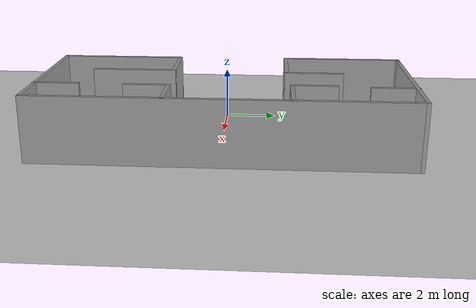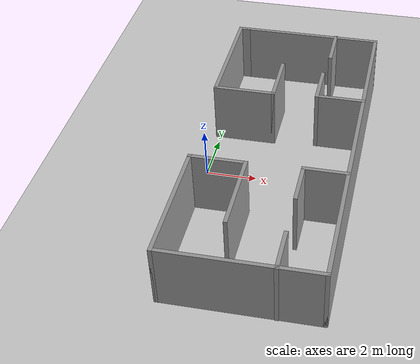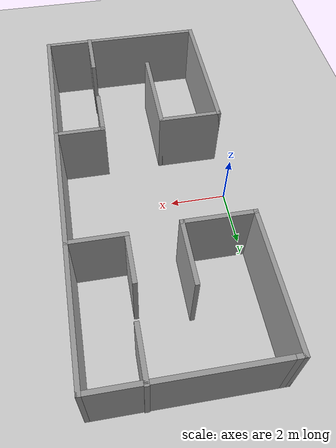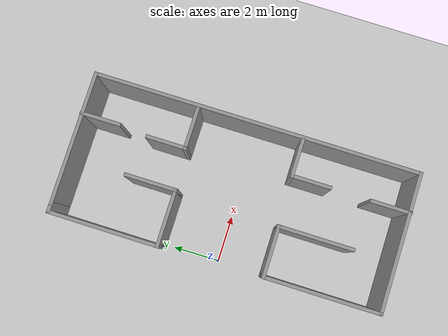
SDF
<sdf version="1.7">
 <world name="default">
  <light name="sun" type="directional">
   <pose>0 0 10 0 -0 0</pose>
   <diffuse>0.8 0.8 0.8 1</diffuse>
   <specular>0.2 0.2 0.2 1</specular>
   <attenuation>
    <range>1000</range>
    <constant>0.9</constant>
    <linear>0.01</linear>
    <quadratic>0.001</quadratic>
   </attenuation>
   <direction>-0.5 0.1 -0.9</direction>
   <spot><inner_angle>0</inner_angle><outer_angle>0</outer_angle><falloff>0</falloff></spot>
  </light>
  <model name="ground_plane">
   <static>1</static>
   <link name="link">
    <collision name="collision">
     <geometry><plane><normal>0 0 1</normal><size>100 100</size></plane></geometry>
     <surface><friction><ode><mu>100</mu><mu2>50</mu2></ode></friction></surface>
    </collision>
    <visual name="visual">
     <cast_shadows>0</cast_shadows>
     <geometry><plane><normal>0 0 1</normal><size>100 100</size></plane></geometry>
     <material>
      <script><uri>file://media/materials/scripts/gazebo.material</uri><name>Gazebo/Grey</name></script>
     </material>
    </visual>
   </link>
  </model>
  <gravity>0 0 -9.8</gravity>
  <magnetic_field>6e-06 2.3e-05 -4.2e-05</magnetic_field>
  <atmosphere type="adiabatic"/>
  <physics type="ode">
   <max_step_size>0.001</max_step_size>
   <real_time_factor>1</real_time_factor>
   <real_time_update_rate>1000</real_time_update_rate>
  </physics>
  <scene><ambient>0.4 0.4 0.4 1</ambient><background>0.7 0.7 0.7 1</background><shadows>1</shadows></scene>
  <audio><device>default</device></audio>
  <spherical_coordinates>
   <surface_model>EARTH_WGS84</surface_model>
   <latitude_deg>0</latitude_deg>
   <longitude_deg>0</longitude_deg>
   <elevation>0</elevation>
   <heading_deg>0</heading_deg>
  </spherical_coordinates>
  <model name="mapaAleatorio">
   <pose>2.84183 0.115024 0 0 -0 0</pose>
   <link name="Wall_19">
    <collision name="Wall_19_Collision">
     <geometry><box><size>5 0.15 2.5</size></box></geometry>
     <pose>0 0 1.25 0 -0 0</pose>
    </collision>
    <visual name="Wall_19_Visual">
     <pose>0 0 1.25 0 -0 0</pose>
     <geometry><box><size>5 0.15 2.5</size></box></geometry>
     <material>
      <script><uri>file://media/materials/scripts/gazebo.material</uri><name>Gazebo/Grey</name></script>
      <ambient>1 1 1 1</ambient>
     </material>
     <meta><layer>0</layer></meta>
    </visual>
    <pose>-2.875 -4.50306 0 0 -0 -1.5708</pose>
   </link>
   <link name="Wall_20">
    <collision name="Wall_20_Collision">
     <geometry><box><size>6 0.15 2.5</size></box></geometry>
     <pose>0 0 1.25 0 -0 0</pose>
    </collision>
    <visual name="Wall_20_Visual">
     <pose>0 0 1.25 0 -0 0</pose>
     <geometry><box><size>6 0.15 2.5</size></box></geometry>
     <material>
      <script><uri>file://media/materials/scripts/gazebo.material</uri><name>Gazebo/Grey</name></script>
      <ambient>1 1 1 1</ambient>
     </material>
     <meta><layer>0</layer></meta>
    </visual>
    <pose>0.05 -6.92806 0 0 -0 0</pose>
   </link>
   <link name="Wall_21">
    <collision name="Wall_21_Collision">
     <geometry><box><size>14 0.15 2.5</size></box></geometry>
     <pose>0 0 1.25 0 -0 0</pose>
    </collision>
    <visual name="Wall_21_Visual">
     <pose>0 0 1.25 0 -0 0</pose>
     <geometry><box><size>14 0.15 2.5</size></box></geometry>
     <material>
      <script><uri>file://media/materials/scripts/gazebo.material</uri><name>Gazebo/Grey</name></script>
      <ambient>1 1 1 1</ambient>
     </material>
     <meta><layer>0</layer></meta>
    </visual>
    <pose>2.975 -0.003061 0 0 -0 1.5708</pose>
   </link>
   <link name="Wall_22">
    <collision name="Wall_22_Collision">
     <geometry><box><size>5.75 0.15 2.5</size></box></geometry>
     <pose>0 0 1.25 0 -0 0</pose>
    </collision>
    <visual name="Wall_22_Visual">
     <pose>0 0 1.25 0 -0 0</pose>
     <geometry><box><size>5.75 0.15 2.5</size></box></geometry>
     <material>
      <script><uri>file://media/materials/scripts/gazebo.material</uri><name>Gazebo/Grey</name></script>
      <ambient>1 1 1 1</ambient>
     </material>
     <meta><layer>0</layer></meta>
    </visual>
    <pose>0.175 6.92194 0 0 -0 3.14159</pose>
   </link>
   <link name="Wall_24">
    <collision name="Wall_24_Collision">
     <geometry><box><size>0.5 0.15 2.5</size></box></geometry>
     <pose>0 0 1.25 0 -0 0</pose>
    </collision>
    <visual name="Wall_24_Visual">
     <pose>0 0 1.25 0 -0 0</pose>
     <geometry><box><size>0.5 0.15 2.5</size></box></geometry>
     <material>
      <script><uri>file://media/materials/scripts/gazebo.material</uri><name>Gazebo/Grey</name></script>
      <ambient>1 1 1 1</ambient>
     </material>
     <meta><layer>0</layer></meta>
    </visual>
    <pose>-2.8 6.92194 0 0 -0 3.14159</pose>
   </link>
   <link name="Wall_25">
    <collision name="Wall_25_Collision">
     <geometry><box><size>4.75 0.15 2.5</size></box></geometry>
     <pose>0 0 1.25 0 -0 0</pose>
    </collision>
    <visual name="Wall_25_Visual">
     <pose>0 0 1.25 0 -0 0</pose>
     <geometry><box><size>4.75 0.15 2.5</size></box></geometry>
     <material>
      <script><uri>file://media/materials/scripts/gazebo.material</uri><name>Gazebo/Grey</name></script>
      <ambient>1 1 1 1</ambient>
     </material>
     <meta><layer>0</layer></meta>
    </visual>
    <pose>-2.975 4.62194 0 0 -0 -1.5708</pose>
   </link>
   <link name="Wall_26">
    <collision name="Wall_26_Collision">
     <geometry><box><size>2.5 0.15 2.5</size></box></geometry>
     <pose>0 0 1.25 0 -0 0</pose>
    </collision>
    <visual name="Wall_26_Visual">
     <pose>0 0 1.25 0 -0 0</pose>
     <geometry><box><size>2.5 0.15 2.5</size></box></geometry>
     <material>
      <script><uri>file://media/materials/scripts/gazebo.material</uri><name>Gazebo/Grey</name></script>
      <ambient>1 1 1 1</ambient>
     </material>
     <meta><layer>0</layer></meta>
    </visual>
    <pose>-1.8 2.32194 0 0 -0 0</pose>
   </link>
   <link name="Wall_27">
    <collision name="Wall_27_Collision">
     <geometry><box><size>2.25 0.15 2.5</size></box></geometry>
     <pose>0 0 1.25 0 -0 0</pose>
    </collision>
    <visual name="Wall_27_Visual">
     <pose>0 0 1.25 0 -0 0</pose>
     <geometry><box><size>2.25 0.15 2.5</size></box></geometry>
     <material>
      <script><uri>file://media/materials/scripts/gazebo.material</uri><name>Gazebo/Grey</name></script>
      <ambient>1 1 1 1</ambient>
     </material>
     <meta><layer>0</layer></meta>
    </visual>
    <pose>-0.625 3.37194 0 0 -0 1.5708</pose>
   </link>
   <link name="Wall_29">
    <collision name="Wall_29_Collision">
     <geometry><box><size>2.25 0.15 2.5</size></box></geometry>
     <pose>0 0 1.25 0 -0 0</pose>
    </collision>
    <visual name="Wall_29_Visual">
     <pose>0 0 1.25 0 -0 0</pose>
     <geometry><box><size>2.25 0.15 2.5</size></box></geometry>
     <material>
      <script><uri>file://media/materials/scripts/gazebo.material</uri><name>Gazebo/Grey</name></script>
      <ambient>1 1 1 1</ambient>
     </material>
     <meta><layer>0</layer></meta>
    </visual>
    <pose>-1.825 -2.07806 0 0 -0 0</pose>
   </link>
   <link name="Wall_30">
    <collision name="Wall_30_Collision">
     <geometry><box><size>3.25 0.15 2.5</size></box></geometry>
     <pose>0 0 1.25 0 -0 0</pose>
    </collision>
    <visual name="Wall_30_Visual">
     <pose>0 0 1.25 0 -0 0</pose>
     <geometry><box><size>3.25 0.15 2.5</size></box></geometry>
     <material>
      <script><uri>file://media/materials/scripts/gazebo.material</uri><name>Gazebo/Grey</name></script>
      <ambient>1 1 1 1</ambient>
     </material>
     <meta><layer>0</layer></meta>
    </visual>
    <pose>-0.775 -3.62806 0 0 -0 -1.5708</pose>
   </link>
   <link name="Wall_32">
    <collision name="Wall_32_Collision">
     <geometry><box><size>1.75 0.15 2.5</size></box></geometry>
     <pose>0 0 1.25 0 -0 0</pose>
    </collision>
    <visual name="Wall_32_Visual">
     <pose>0 0 1.25 0 -0 0</pose>
     <geometry><box><size>1.75 0.15 2.5</size></box></geometry>
     <material>
      <script><uri>file://media/materials/scripts/gazebo.material</uri><name>Gazebo/Grey</name></script>
      <ambient>1 1 1 1</ambient>
     </material>
     <meta><layer>0</layer></meta>
    </visual>
    <pose>2.13472 -1.9876 0 0 -0 3.14159</pose>
   </link>
   <link name="Wall_33">
    <collision name="Wall_33_Collision">
     <geometry><box><size>1.75 0.15 2.5</size></box></geometry>
     <pose>0 0 1.25 0 -0 0</pose>
    </collision>
    <visual name="Wall_33_Visual">
     <pose>0 0 1.25 0 -0 0</pose>
     <geometry><box><size>1.75 0.15 2.5</size></box></geometry>
     <material>
      <script><uri>file://media/materials/scripts/gazebo.material</uri><name>Gazebo/Grey</name></script>
      <ambient>1 1 1 1</ambient>
     </material>
     <meta><layer>0</layer></meta>
    </visual>
    <pose>1.33472 -2.7876 0 0 -0 -1.5708</pose>
   </link>
   <link name="Wall_35">
    <collision name="Wall_35_Collision">
     <geometry><box><size>1.75 0.15 2.5</size></box></geometry>
     <pose>0 0 1.25 0 -0 0</pose>
    </collision>
    <visual name="Wall_35_Visual">
     <pose>0 0 1.25 0 -0 0</pose>
     <geometry><box><size>1.75 0.15 2.5</size></box></geometry>
     <material>
      <script><uri>file://media/materials/scripts/gazebo.material</uri><name>Gazebo/Grey</name></script>
      <ambient>1 1 1 1</ambient>
     </material>
     <meta><layer>0</layer></meta>
    </visual>
    <pose>1.3165 -6.14781 0 0 -0 1.5708</pose>
   </link>
   <link name="Wall_39">
    <collision name="Wall_39_Collision">
     <geometry><box><size>1.75 0.15 2.5</size></box></geometry>
     <pose>0 0 1.25 0 -0 0</pose>
    </collision>
    <visual name="Wall_39_Visual">
     <pose>0 0 1.25 0 -0 0</pose>
     <geometry><box><size>1.75 0.15 2.5</size></box></geometry>
     <material>
      <script><uri>file://media/materials/scripts/gazebo.material</uri><name>Gazebo/Grey</name></script>
      <ambient>1 1 1 1</ambient>
     </material>
     <meta><layer>0</layer></meta>
    </visual>
    <pose>1.24614 6.14781 0 0 -0 -1.5708</pose>
   </link>
   <link name="Wall_41">
    <collision name="Wall_41_Collision">
     <geometry><box><size>2 0.15 2.5</size></box></geometry>
     <pose>0 0 1.25 0 -0 0</pose>
    </collision>
    <visual name="Wall_41_Visual">
     <pose>0 0 1.25 0 -0 0</pose>
     <geometry><box><size>2 0.15 2.5</size></box></geometry>
     <material>
      <script><uri>file://media/materials/scripts/gazebo.material</uri><name>Gazebo/Grey</name></script>
      <ambient>1 1 1 1</ambient>
     </material>
     <meta><layer>0</layer></meta>
    </visual>
    <pose>2.0449 2.4801 0 0 -0 3.14159</pose>
   </link>
   <link name="Wall_43">
    <collision name="Wall_43_Collision">
     <geometry><box><size>1.75 0.15 2.5</size></box></geometry>
     <pose>0 0 1.25 0 -0 0</pose>
    </collision>
    <visual name="Wall_43_Visual">
     <pose>0 0 1.25 0 -0 0</pose>
     <geometry><box><size>1.75 0.15 2.5</size></box></geometry>
     <material>
      <script><uri>file://media/materials/scripts/gazebo.material</uri><name>Gazebo/Grey</name></script>
      <ambient>1 1 1 1</ambient>
     </material>
     <meta><layer>0</layer></meta>
    </visual>
    <pose>1.1199 3.2801 0 0 -0 1.5708</pose>
   </link>
   <static>1</static>
  </model>
 </world>
</sdf>
